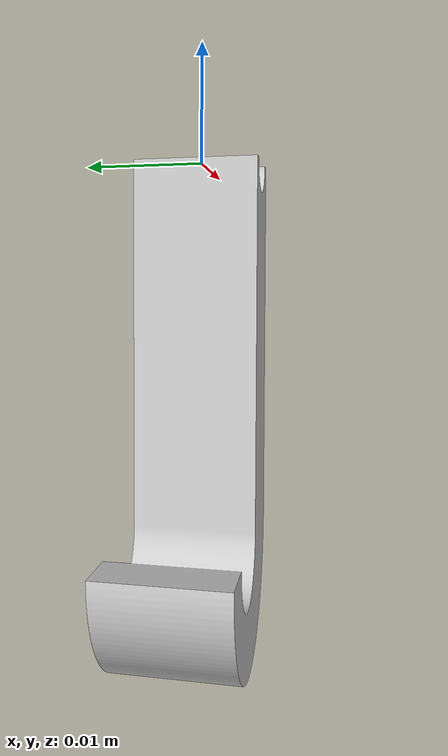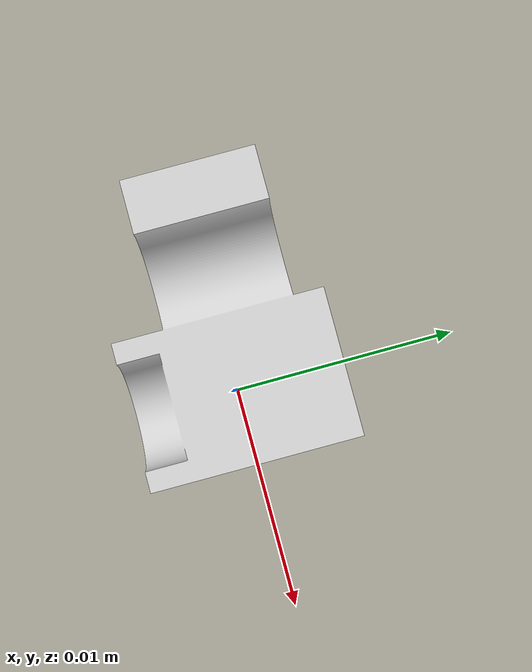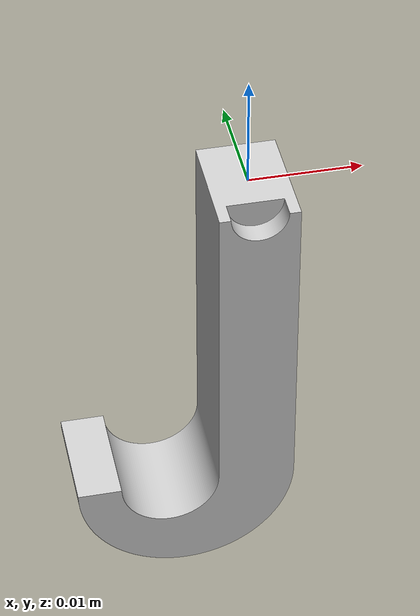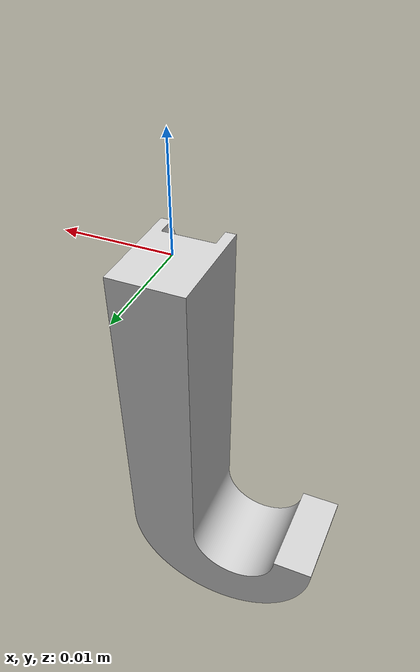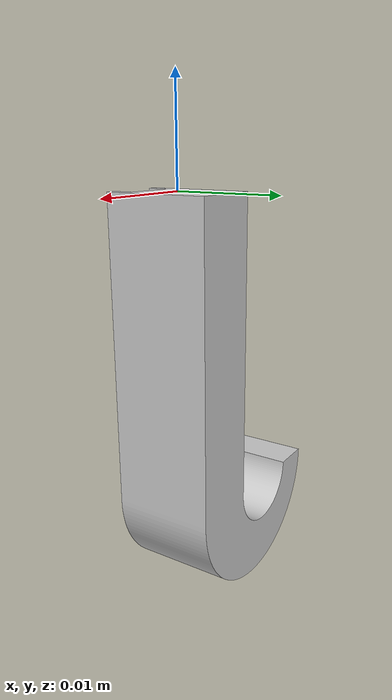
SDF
<?xml version="1.0" ?>
<sdf version="1.6">
  <model name="lower_leg">
    <static>false</static>
    <link name="lower_leg_link">
      <inertial auto="true" />
      <visual name="lower_leg_visual">
        <geometry>
          <mesh>
            <uri>model://meshes/lower_leg.dae</uri>
          </mesh>
        </geometry>
      </visual>
      <collision name="lower_leg_collision">
        <density>1240.0</density>
        <geometry>
          <mesh>
            <uri>model://meshes/lower_leg.dae</uri>
          </mesh>
        </geometry>
      </collision>
    </link>
  </model>
</sdf>
